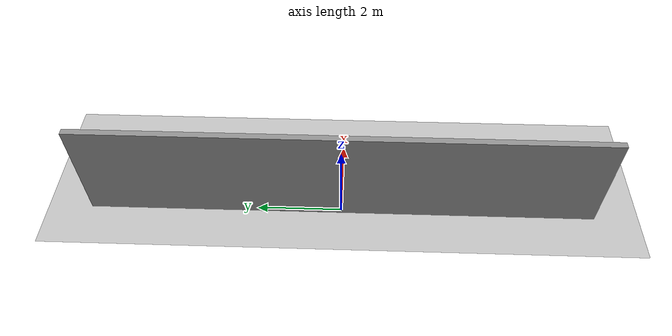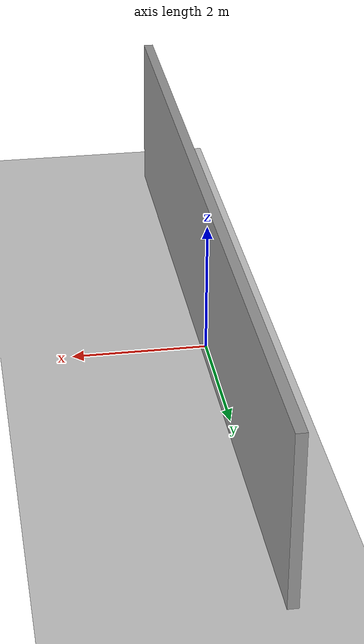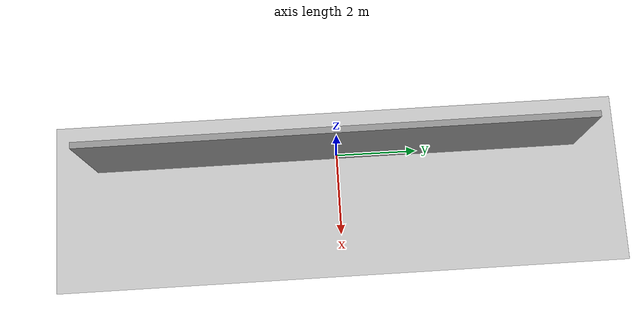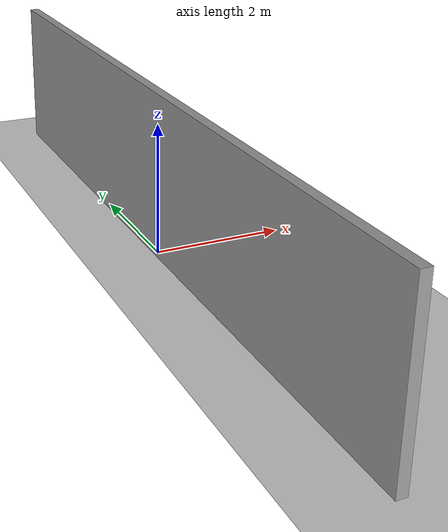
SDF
<?xml version="1.0" ?>
<sdf version="1.7">
  <world name="closed_loop_track">
    <spherical_coordinates>
      <latitude_deg>0</latitude_deg>
      <longitude_deg>0</longitude_deg>
      <elevation>0</elevation>
      <heading_deg>0</heading_deg>
    </spherical_coordinates>

    <include>
      <uri>model://sun</uri>
    </include>
    <include>
      <uri>model://ground_plane</uri>
    </include>

    <include>
      <uri>model://t2</uri>
      <name>closed_loop_track_walls</name>
      <pose>0 0 0 0 0 0</pose>
    </include>

    <physics type="ode">
      <real_time_update_rate>1000.0</real_time_update_rate>
      <max_step_size>0.001</max_step_size>
    </physics>
  </world>
</sdf>

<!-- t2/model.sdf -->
<sdf version='1.6'>
  <model name='t2'>
    <pose frame=''>-10.7279 0.45928 0 0 -0 0</pose>
    <link name='Wall_0'>
      <collision name='Wall_0_Collision'>
        <geometry>
          <box>
            <size>12 0.15 2.5</size>
          </box>
        </geometry>
        <pose frame=''>0 0 1.25 0 -0 0</pose>
      </collision>
      <visual name='Wall_0_Visual'>
        <pose frame=''>0 0 1.25 0 -0 0</pose>
        <geometry>
          <box>
            <size>12 0.15 2.5</size>
          </box>
        </geometry>
        <material>
          <script>
            <uri>file://media/materials/scripts/gazebo.material</uri>
            <name>Gazebo/Grey</name>
          </script>
          <ambient>1 1 1 1</ambient>
        </material>
        <meta>
          <layer>0</layer>
        </meta>
      </visual>
      <pose frame=''>0 0 0 0 -0 1.5708</pose>
    </link>
    <static>1</static>
  </model>
</sdf>
